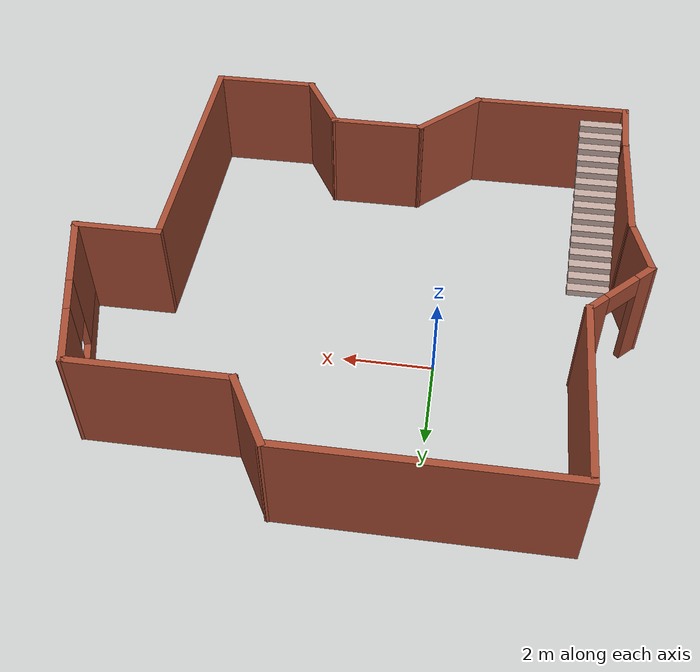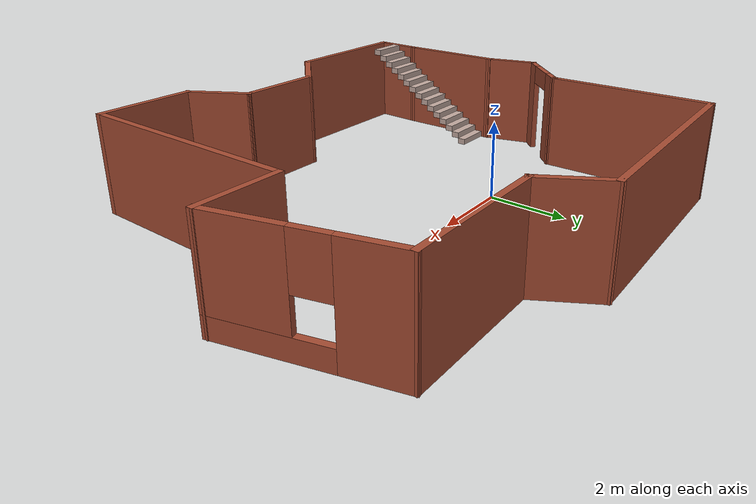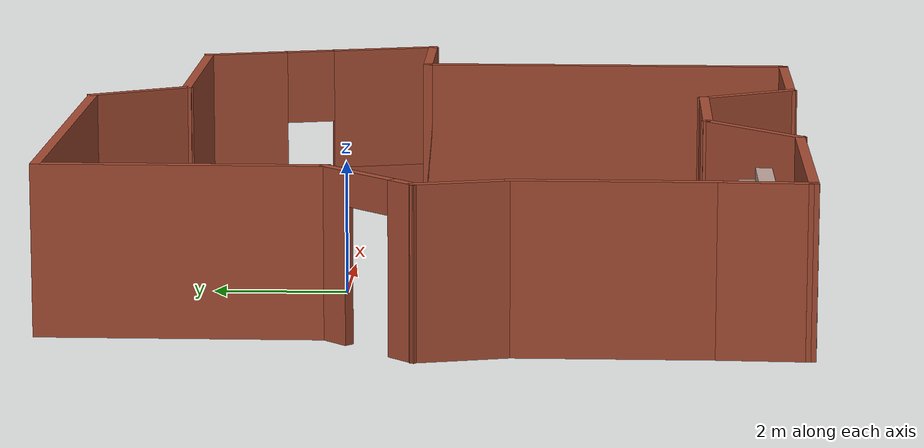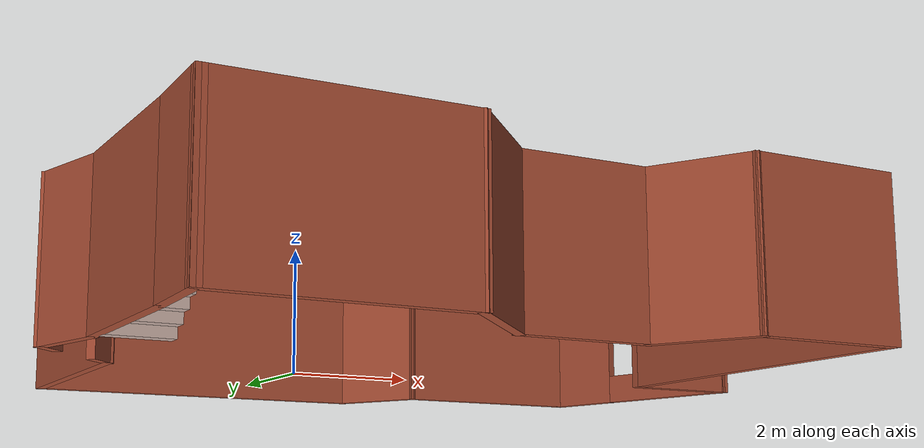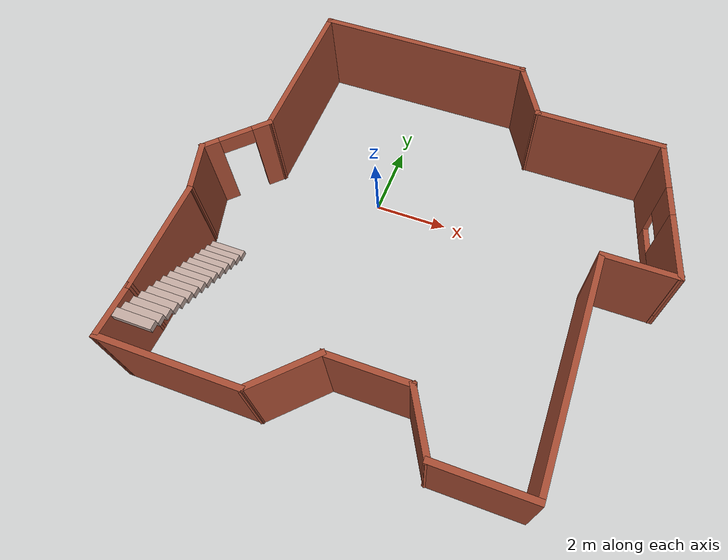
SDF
<?xml version='1.0'?>
<sdf version='1.7'>
  <model name='TestRoom'>
    <pose>1.81579 -1.29508 0 0 -0 0</pose>
    <link name='Stairs_0'>
      <visual name='Stairs_0_Visual_0'>
        <pose>-5.24154 -1.49432 0.083333 0 -0 0</pose>
        <geometry>
          <box>
            <size>1 0.233333 0.166667</size>
          </box>
        </geometry>
        <material>
          <script>
            <uri>file://media/materials/scripts/gazebo.material</uri>
            <name>Gazebo/Grey</name>
          </script>
          <ambient>0.760784 0.662745 0.627451 1</ambient>
        </material>
        <meta>
          <layer>0</layer>
        </meta>
      </visual>
      <collision name='Stairs_0_Collision_0'>
        <geometry>
          <box>
            <size>1 0.233333 0.166667</size>
          </box>
        </geometry>
        <pose>-5.24154 -1.49432 0.083333 0 -0 0</pose>
      </collision>
      <visual name='Stairs_0_Visual_1'>
        <pose>-5.24154 -1.72765 0.25 0 -0 0</pose>
        <geometry>
          <box>
            <size>1 0.233333 0.166667</size>
          </box>
        </geometry>
        <material>
          <script>
            <uri>file://media/materials/scripts/gazebo.material</uri>
            <name>Gazebo/Grey</name>
          </script>
          <ambient>0.760784 0.662745 0.627451 1</ambient>
        </material>
        <meta>
          <layer>0</layer>
        </meta>
      </visual>
      <collision name='Stairs_0_Collision_1'>
        <geometry>
          <box>
            <size>1 0.233333 0.166667</size>
          </box>
        </geometry>
        <pose>-5.24154 -1.72765 0.25 0 -0 0</pose>
      </collision>
      <visual name='Stairs_0_Visual_2'>
        <pose>-5.24154 -1.96098 0.416667 0 -0 0</pose>
        <geometry>
          <box>
            <size>1 0.233333 0.166667</size>
          </box>
        </geometry>
        <material>
          <script>
            <uri>file://media/materials/scripts/gazebo.material</uri>
            <name>Gazebo/Grey</name>
          </script>
          <ambient>0.760784 0.662745 0.627451 1</ambient>
        </material>
        <meta>
          <layer>0</layer>
        </meta>
      </visual>
      <collision name='Stairs_0_Collision_2'>
        <geometry>
          <box>
            <size>1 0.233333 0.166667</size>
          </box>
        </geometry>
        <pose>-5.24154 -1.96098 0.416667 0 -0 0</pose>
      </collision>
      <visual name='Stairs_0_Visual_3'>
        <pose>-5.24154 -2.19432 0.583333 0 -0 0</pose>
        <geometry>
          <box>
            <size>1 0.233333 0.166667</size>
          </box>
        </geometry>
        <material>
          <script>
            <uri>file://media/materials/scripts/gazebo.material</uri>
            <name>Gazebo/Grey</name>
          </script>
          <ambient>0.760784 0.662745 0.627451 1</ambient>
        </material>
        <meta>
          <layer>0</layer>
        </meta>
      </visual>
      <collision name='Stairs_0_Collision_3'>
        <geometry>
          <box>
            <size>1 0.233333 0.166667</size>
          </box>
        </geometry>
        <pose>-5.24154 -2.19432 0.583333 0 -0 0</pose>
      </collision>
      <visual name='Stairs_0_Visual_4'>
        <pose>-5.24154 -2.42765 0.75 0 -0 0</pose>
        <geometry>
          <box>
            <size>1 0.233333 0.166667</size>
          </box>
        </geometry>
        <material>
          <script>
            <uri>file://media/materials/scripts/gazebo.material</uri>
            <name>Gazebo/Grey</name>
          </script>
          <ambient>0.760784 0.662745 0.627451 1</ambient>
        </material>
        <meta>
          <layer>0</layer>
        </meta>
      </visual>
      <collision name='Stairs_0_Collision_4'>
        <geometry>
          <box>
            <size>1 0.233333 0.166667</size>
          </box>
        </geometry>
        <pose>-5.24154 -2.42765 0.75 0 -0 0</pose>
      </collision>
      <visual name='Stairs_0_Visual_5'>
        <pose>-5.24154 -2.66099 0.916667 0 -0 0</pose>
        <geometry>
          <box>
            <size>1 0.233333 0.166667</size>
          </box>
        </geometry>
        <material>
          <script>
            <uri>file://media/materials/scripts/gazebo.material</uri>
            <name>Gazebo/Grey</name>
          </script>
          <ambient>0.760784 0.662745 0.627451 1</ambient>
        </material>
        <meta>
          <layer>0</layer>
        </meta>
      </visual>
      <collision name='Stairs_0_Collision_5'>
        <geometry>
          <box>
            <size>1 0.233333 0.166667</size>
          </box>
        </geometry>
        <pose>-5.24154 -2.66099 0.916667 0 -0 0</pose>
      </collision>
      <visual name='Stairs_0_Visual_6'>
        <pose>-5.24154 -2.89432 1.08333 0 -0 0</pose>
        <geometry>
          <box>
            <size>1 0.233333 0.166667</size>
          </box>
        </geometry>
        <material>
          <script>
            <uri>file://media/materials/scripts/gazebo.material</uri>
            <name>Gazebo/Grey</name>
          </script>
          <ambient>0.760784 0.662745 0.627451 1</ambient>
        </material>
        <meta>
          <layer>0</layer>
        </meta>
      </visual>
      <collision name='Stairs_0_Collision_6'>
        <geometry>
          <box>
            <size>1 0.233333 0.166667</size>
          </box>
        </geometry>
        <pose>-5.24154 -2.89432 1.08333 0 -0 0</pose>
      </collision>
      <visual name='Stairs_0_Visual_7'>
        <pose>-5.24154 -3.12765 1.25 0 -0 0</pose>
        <geometry>
          <box>
            <size>1 0.233333 0.166667</size>
          </box>
        </geometry>
        <material>
          <script>
            <uri>file://media/materials/scripts/gazebo.material</uri>
            <name>Gazebo/Grey</name>
          </script>
          <ambient>0.760784 0.662745 0.627451 1</ambient>
        </material>
        <meta>
          <layer>0</layer>
        </meta>
      </visual>
      <collision name='Stairs_0_Collision_7'>
        <geometry>
          <box>
            <size>1 0.233333 0.166667</size>
          </box>
        </geometry>
        <pose>-5.24154 -3.12765 1.25 0 -0 0</pose>
      </collision>
      <visual name='Stairs_0_Visual_8'>
        <pose>-5.24154 -3.36098 1.41667 0 -0 0</pose>
        <geometry>
          <box>
            <size>1 0.233333 0.166667</size>
          </box>
        </geometry>
        <material>
          <script>
            <uri>file://media/materials/scripts/gazebo.material</uri>
            <name>Gazebo/Grey</name>
          </script>
          <ambient>0.760784 0.662745 0.627451 1</ambient>
        </material>
        <meta>
          <layer>0</layer>
        </meta>
      </visual>
      <collision name='Stairs_0_Collision_8'>
        <geometry>
          <box>
            <size>1 0.233333 0.166667</size>
          </box>
        </geometry>
        <pose>-5.24154 -3.36098 1.41667 0 -0 0</pose>
      </collision>
      <visual name='Stairs_0_Visual_9'>
        <pose>-5.24154 -3.59432 1.58333 0 -0 0</pose>
        <geometry>
          <box>
            <size>1 0.233333 0.166667</size>
          </box>
        </geometry>
        <material>
          <script>
            <uri>file://media/materials/scripts/gazebo.material</uri>
            <name>Gazebo/Grey</name>
          </script>
          <ambient>0.760784 0.662745 0.627451 1</ambient>
        </material>
        <meta>
          <layer>0</layer>
        </meta>
      </visual>
      <collision name='Stairs_0_Collision_9'>
        <geometry>
          <box>
            <size>1 0.233333 0.166667</size>
          </box>
        </geometry>
        <pose>-5.24154 -3.59432 1.58333 0 -0 0</pose>
      </collision>
      <visual name='Stairs_0_Visual_10'>
        <pose>-5.24154 -3.82765 1.75 0 -0 0</pose>
        <geometry>
          <box>
            <size>1 0.233333 0.166667</size>
          </box>
        </geometry>
        <material>
          <script>
            <uri>file://media/materials/scripts/gazebo.material</uri>
            <name>Gazebo/Grey</name>
          </script>
          <ambient>0.760784 0.662745 0.627451 1</ambient>
        </material>
        <meta>
          <layer>0</layer>
        </meta>
      </visual>
      <collision name='Stairs_0_Collision_10'>
        <geometry>
          <box>
            <size>1 0.233333 0.166667</size>
          </box>
        </geometry>
        <pose>-5.24154 -3.82765 1.75 0 -0 0</pose>
      </collision>
      <visual name='Stairs_0_Visual_11'>
        <pose>-5.24154 -4.06098 1.91667 0 -0 0</pose>
        <geometry>
          <box>
            <size>1 0.233333 0.166667</size>
          </box>
        </geometry>
        <material>
          <script>
            <uri>file://media/materials/scripts/gazebo.material</uri>
            <name>Gazebo/Grey</name>
          </script>
          <ambient>0.760784 0.662745 0.627451 1</ambient>
        </material>
        <meta>
          <layer>0</layer>
        </meta>
      </visual>
      <collision name='Stairs_0_Collision_11'>
        <geometry>
          <box>
            <size>1 0.233333 0.166667</size>
          </box>
        </geometry>
        <pose>-5.24154 -4.06098 1.91667 0 -0 0</pose>
      </collision>
      <visual name='Stairs_0_Visual_12'>
        <pose>-5.24154 -4.29432 2.08333 0 -0 0</pose>
        <geometry>
          <box>
            <size>1 0.233333 0.166667</size>
          </box>
        </geometry>
        <material>
          <script>
            <uri>file://media/materials/scripts/gazebo.material</uri>
            <name>Gazebo/Grey</name>
          </script>
          <ambient>0.760784 0.662745 0.627451 1</ambient>
        </material>
        <meta>
          <layer>0</layer>
        </meta>
      </visual>
      <collision name='Stairs_0_Collision_12'>
        <geometry>
          <box>
            <size>1 0.233333 0.166667</size>
          </box>
        </geometry>
        <pose>-5.24154 -4.29432 2.08333 0 -0 0</pose>
      </collision>
      <visual name='Stairs_0_Visual_13'>
        <pose>-5.24154 -4.52765 2.25 0 -0 0</pose>
        <geometry>
          <box>
            <size>1 0.233333 0.166667</size>
          </box>
        </geometry>
        <material>
          <script>
            <uri>file://media/materials/scripts/gazebo.material</uri>
            <name>Gazebo/Grey</name>
          </script>
          <ambient>0.760784 0.662745 0.627451 1</ambient>
        </material>
        <meta>
          <layer>0</layer>
        </meta>
      </visual>
      <collision name='Stairs_0_Collision_13'>
        <geometry>
          <box>
            <size>1 0.233333 0.166667</size>
          </box>
        </geometry>
        <pose>-5.24154 -4.52765 2.25 0 -0 0</pose>
      </collision>
      <visual name='Stairs_0_Visual_14'>
        <pose>-5.24154 -4.76098 2.41667 0 -0 0</pose>
        <geometry>
          <box>
            <size>1 0.233333 0.166667</size>
          </box>
        </geometry>
        <material>
          <script>
            <uri>file://media/materials/scripts/gazebo.material</uri>
            <name>Gazebo/Grey</name>
          </script>
          <ambient>0.760784 0.662745 0.627451 1</ambient>
        </material>
        <meta>
          <layer>0</layer>
        </meta>
      </visual>
      <collision name='Stairs_0_Collision_14'>
        <geometry>
          <box>
            <size>1 0.233333 0.166667</size>
          </box>
        </geometry>
        <pose>-5.24154 -4.76098 2.41667 0 -0 0</pose>
      </collision>
    </link>
    <link name='Wall_10'>
      <collision name='Wall_10_Collision'>
        <geometry>
          <box>
            <size>6 0.15 2.5</size>
          </box>
        </geometry>
        <pose>0 0 1.25 0 -0 0</pose>
      </collision>
      <visual name='Wall_10_Visual'>
        <pose>0 0 1.25 0 -0 0</pose>
        <geometry>
          <box>
            <size>6 0.15 2.5</size>
          </box>
        </geometry>
        <material>
          <script>
            <uri>file://media/materials/scripts/gazebo.material</uri>
            <name>Gazebo/Bricks</name>
          </script>
          <ambient>1 0.764706 0.305882 1</ambient>
        </material>
        <meta>
          <layer>0</layer>
        </meta>
      </visual>
      <pose>-1.91205 5.47723 0 0 -0 0</pose>
    </link>
    <link name='Wall_11'>
      <collision name='Wall_11_Collision'>
        <geometry>
          <box>
            <size>1.75 0.15 2.5</size>
          </box>
        </geometry>
        <pose>0 0 1.25 0 -0 0</pose>
      </collision>
      <visual name='Wall_11_Visual'>
        <pose>0 0 1.25 0 -0 0</pose>
        <geometry>
          <box>
            <size>1.75 0.15 2.5</size>
          </box>
        </geometry>
        <material>
          <script>
            <uri>file://media/materials/scripts/gazebo.material</uri>
            <name>Gazebo/Bricks</name>
          </script>
          <ambient>1 0.764706 0.305882 1</ambient>
        </material>
        <meta>
          <layer>0</layer>
        </meta>
      </visual>
      <pose>1.41295 4.78441 0 0 -0 -1.0472</pose>
    </link>
    <link name='Wall_12'>
      <collision name='Wall_12_Collision'>
        <geometry>
          <box>
            <size>3.5 0.15 2.5</size>
          </box>
        </geometry>
        <pose>0 0 1.25 0 -0 0</pose>
      </collision>
      <visual name='Wall_12_Visual'>
        <pose>0 0 1.25 0 -0 0</pose>
        <geometry>
          <box>
            <size>3.5 0.15 2.5</size>
          </box>
        </geometry>
        <material>
          <script>
            <uri>file://media/materials/scripts/gazebo.material</uri>
            <name>Gazebo/Bricks</name>
          </script>
          <ambient>1 0.764706 0.305882 1</ambient>
        </material>
        <meta>
          <layer>0</layer>
        </meta>
      </visual>
      <pose>3.48795 4.09159 0 0 -0 0</pose>
    </link>
    <link name='Wall_13'>
      <pose>5.66118 2.23218 0 0 -0 -1.309</pose>
      <visual name='Wall_13_Visual_0'>
        <pose>-1.30292 0 1.25 0 -0 0</pose>
        <geometry>
          <box>
            <size>1.39415 0.15 2.5</size>
          </box>
        </geometry>
        <material>
          <script>
            <uri>file://media/materials/scripts/gazebo.material</uri>
            <name>Gazebo/Bricks</name>
          </script>
          <ambient>1 0.764706 0.305882 1</ambient>
        </material>
        <meta>
          <layer>0</layer>
        </meta>
      </visual>
      <collision name='Wall_13_Collision_0'>
        <geometry>
          <box>
            <size>1.39415 0.15 2.5</size>
          </box>
        </geometry>
        <pose>-1.30292 0 1.25 0 -0 0</pose>
      </collision>
      <visual name='Wall_13_Visual_1'>
        <pose>0.697077 0 0.25 0 -0 0</pose>
        <geometry>
          <box>
            <size>2.60585 0.15 0.5</size>
          </box>
        </geometry>
        <material>
          <script>
            <uri>file://media/materials/scripts/gazebo.material</uri>
            <name>Gazebo/Bricks</name>
          </script>
          <ambient>1 0.764706 0.305882 1</ambient>
        </material>
        <meta>
          <layer>0</layer>
        </meta>
      </visual>
      <collision name='Wall_13_Collision_1'>
        <geometry>
          <box>
            <size>2.60585 0.15 0.5</size>
          </box>
        </geometry>
        <pose>0.697077 0 0.25 0 -0 0</pose>
      </collision>
      <visual name='Wall_13_Visual_2'>
        <pose>1.09708 0 1.5 0 -0 0</pose>
        <geometry>
          <box>
            <size>1.80585 0.15 2</size>
          </box>
        </geometry>
        <material>
          <script>
            <uri>file://media/materials/scripts/gazebo.material</uri>
            <name>Gazebo/Bricks</name>
          </script>
          <ambient>1 0.764706 0.305882 1</ambient>
        </material>
        <meta>
          <layer>0</layer>
        </meta>
      </visual>
      <collision name='Wall_13_Collision_2'>
        <geometry>
          <box>
            <size>1.80585 0.15 2</size>
          </box>
        </geometry>
        <pose>1.09708 0 1.5 0 -0 0</pose>
      </collision>
      <visual name='Wall_13_Visual_3'>
        <pose>-0.205846 0 1.9 0 -0 0</pose>
        <geometry>
          <box>
            <size>0.8 0.15 1.2</size>
          </box>
        </geometry>
        <material>
          <script>
            <uri>file://media/materials/scripts/gazebo.material</uri>
            <name>Gazebo/Bricks</name>
          </script>
          <ambient>1 0.764706 0.305882 1</ambient>
        </material>
        <meta>
          <layer>0</layer>
        </meta>
      </visual>
      <collision name='Wall_13_Collision_3'>
        <geometry>
          <box>
            <size>0.8 0.15 1.2</size>
          </box>
        </geometry>
        <pose>-0.205846 0 1.9 0 -0 0</pose>
      </collision>
    </link>
    <link name='Wall_14'>
      <collision name='Wall_14_Collision'>
        <geometry>
          <box>
            <size>2 0.15 2.5</size>
          </box>
        </geometry>
        <pose>0 0 1.25 0 -0 0</pose>
      </collision>
      <visual name='Wall_14_Visual'>
        <pose>0 0 1.25 0 -0 0</pose>
        <geometry>
          <box>
            <size>2 0.15 2.5</size>
          </box>
        </geometry>
        <material>
          <script>
            <uri>file://media/materials/scripts/gazebo.material</uri>
            <name>Gazebo/Bricks</name>
          </script>
          <ambient>1 0.764706 0.305882 1</ambient>
        </material>
        <meta>
          <layer>0</layer>
        </meta>
      </visual>
      <pose>5.23441 0.372773 0 0 -0 3.14159</pose>
    </link>
    <link name='Wall_16'>
      <collision name='Wall_16_Collision'>
        <geometry>
          <box>
            <size>6 0.15 2.5</size>
          </box>
        </geometry>
        <pose>0 0 1.25 0 -0 0</pose>
      </collision>
      <visual name='Wall_16_Visual'>
        <pose>0 0 1.25 0 -0 0</pose>
        <geometry>
          <box>
            <size>6 0.15 2.5</size>
          </box>
        </geometry>
        <material>
          <script>
            <uri>file://media/materials/scripts/gazebo.material</uri>
            <name>Gazebo/Bricks</name>
          </script>
          <ambient>1 0.764706 0.305882 1</ambient>
        </material>
        <meta>
          <layer>0</layer>
        </meta>
      </visual>
      <pose>4.3094 -2.55223 0 0 -0 -1.5708</pose>
    </link>
    <link name='Wall_17'>
      <collision name='Wall_17_Collision'>
        <geometry>
          <box>
            <size>2.5 0.15 2.5</size>
          </box>
        </geometry>
        <pose>0 0 1.25 0 -0 0</pose>
      </collision>
      <visual name='Wall_17_Visual'>
        <pose>0 0 1.25 0 -0 0</pose>
        <geometry>
          <box>
            <size>2.5 0.15 2.5</size>
          </box>
        </geometry>
        <material>
          <script>
            <uri>file://media/materials/scripts/gazebo.material</uri>
            <name>Gazebo/Bricks</name>
          </script>
          <ambient>1 0.764706 0.305882 1</ambient>
        </material>
        <meta>
          <layer>0</layer>
        </meta>
      </visual>
      <pose>3.13441 -5.47723 0 0 -0 3.14159</pose>
    </link>
    <link name='Wall_18'>
      <collision name='Wall_18_Collision'>
        <geometry>
          <box>
            <size>1.75 0.15 2.5</size>
          </box>
        </geometry>
        <pose>0 0 1.25 0 -0 0</pose>
      </collision>
      <visual name='Wall_18_Visual'>
        <pose>0 0 1.25 0 -0 0</pose>
        <geometry>
          <box>
            <size>1.75 0.15 2.5</size>
          </box>
        </geometry>
        <material>
          <script>
            <uri>file://media/materials/scripts/gazebo.material</uri>
            <name>Gazebo/Bricks</name>
          </script>
          <ambient>1 0.764706 0.305882 1</ambient>
        </material>
        <meta>
          <layer>0</layer>
        </meta>
      </visual>
      <pose>1.55941 -4.78441 0 0 -0 2.0944</pose>
    </link>
    <link name='Wall_19'>
      <collision name='Wall_19_Collision'>
        <geometry>
          <box>
            <size>2.25 0.15 2.5</size>
          </box>
        </geometry>
        <pose>0 0 1.25 0 -0 0</pose>
      </collision>
      <visual name='Wall_19_Visual'>
        <pose>0 0 1.25 0 -0 0</pose>
        <geometry>
          <box>
            <size>2.25 0.15 2.5</size>
          </box>
        </geometry>
        <material>
          <script>
            <uri>file://media/materials/scripts/gazebo.material</uri>
            <name>Gazebo/Bricks</name>
          </script>
          <ambient>1 0.764706 0.305882 1</ambient>
        </material>
        <meta>
          <layer>0</layer>
        </meta>
      </visual>
      <pose>0.109406 -4.09159 0 0 -0 3.14159</pose>
    </link>
    <link name='Wall_2'>
      <collision name='Wall_2_Collision'>
        <geometry>
          <box>
            <size>3 0.15 2.5</size>
          </box>
        </geometry>
        <pose>0 0 1.25 0 -0 0</pose>
      </collision>
      <visual name='Wall_2_Visual'>
        <pose>0 0 1.25 0 -0 0</pose>
        <geometry>
          <box>
            <size>3 0.15 2.5</size>
          </box>
        </geometry>
        <material>
          <script>
            <uri>file://media/materials/scripts/gazebo.material</uri>
            <name>Gazebo/Bricks</name>
          </script>
          <ambient>1 0.764706 0.305882 1</ambient>
        </material>
        <meta>
          <layer>0</layer>
        </meta>
      </visual>
      <pose>-5.79579 -2.65992 0 0 -0 -1.5708</pose>
    </link>
    <link name='Wall_20'>
      <collision name='Wall_20_Collision'>
        <geometry>
          <box>
            <size>2 0.15 2.5</size>
          </box>
        </geometry>
        <pose>0 0 1.25 0 -0 0</pose>
      </collision>
      <visual name='Wall_20_Visual'>
        <pose>0 0 1.25 0 -0 0</pose>
        <geometry>
          <box>
            <size>2 0.15 2.5</size>
          </box>
        </geometry>
        <material>
          <script>
            <uri>file://media/materials/scripts/gazebo.material</uri>
            <name>Gazebo/Bricks</name>
          </script>
          <ambient>1 0.764706 0.305882 1</ambient>
        </material>
        <meta>
          <layer>0</layer>
        </meta>
      </visual>
      <pose>-1.59467 -4.74566 0 0 -0 -2.35619</pose>
    </link>
    <link name='Wall_21'>
      <collision name='Wall_21_Collision'>
        <geometry>
          <box>
            <size>3.75 0.15 2.5</size>
          </box>
        </geometry>
        <pose>0 0 1.25 0 -0 0</pose>
      </collision>
      <visual name='Wall_21_Visual'>
        <pose>0 0 1.25 0 -0 0</pose>
        <geometry>
          <box>
            <size>3.75 0.15 2.5</size>
          </box>
        </geometry>
        <material>
          <script>
            <uri>file://media/materials/scripts/gazebo.material</uri>
            <name>Gazebo/Bricks</name>
          </script>
          <ambient>1 0.764706 0.305882 1</ambient>
        </material>
        <meta>
          <layer>0</layer>
        </meta>
      </visual>
      <pose>-4.04874 -5.39973 0 0 -0 3.14159</pose>
    </link>
    <link name='Wall_22'>
      <collision name='Wall_22_Collision'>
        <geometry>
          <box>
            <size>1.46588 0.15 2.5</size>
          </box>
        </geometry>
        <pose>0 0 1.25 0 -0 0</pose>
      </collision>
      <visual name='Wall_22_Visual'>
        <pose>0 0 1.25 0 -0 0</pose>
        <geometry>
          <box>
            <size>1.46588 0.15 2.5</size>
          </box>
        </geometry>
        <material>
          <script>
            <uri>file://media/materials/scripts/gazebo.material</uri>
            <name>Gazebo/Bricks</name>
          </script>
          <ambient>1 0.764706 0.305882 1</ambient>
        </material>
        <meta>
          <layer>0</layer>
        </meta>
      </visual>
      <pose>-5.82227 -4.74233 0 0 -0 1.53054</pose>
    </link>
    <link name='Wall_6'>
      <collision name='Wall_6_Collision'>
        <geometry>
          <box>
            <size>1.5 0.15 2.5</size>
          </box>
        </geometry>
        <pose>0 0 1.25 0 -0 0</pose>
      </collision>
      <visual name='Wall_6_Visual'>
        <pose>0 0 1.25 0 -0 0</pose>
        <geometry>
          <box>
            <size>1.5 0.15 2.5</size>
          </box>
        </geometry>
        <material>
          <script>
            <uri>file://media/materials/scripts/gazebo.material</uri>
            <name>Gazebo/Bricks</name>
          </script>
          <ambient>1 0.764706 0.305882 1</ambient>
        </material>
        <meta>
          <layer>0</layer>
        </meta>
      </visual>
      <pose>-5.97049 -0.58292 0 0 -0 1.8326</pose>
    </link>
    <link name='Wall_7'>
      <pose>-5.49112 0.723154 0 0 -0 0.785398</pose>
      <visual name='Wall_7_Visual_0'>
        <pose>-0.734606 0 1.25 0 -0 0</pose>
        <geometry>
          <box>
            <size>0.530788 0.15 2.5</size>
          </box>
        </geometry>
        <material>
          <script>
            <uri>file://media/materials/scripts/gazebo.material</uri>
            <name>Gazebo/Bricks</name>
          </script>
          <ambient>1 0.764706 0.305882 1</ambient>
        </material>
        <meta>
          <layer>0</layer>
        </meta>
      </visual>
      <collision name='Wall_7_Collision_0'>
        <geometry>
          <box>
            <size>0.530788 0.15 2.5</size>
          </box>
        </geometry>
        <pose>-0.734606 0 1.25 0 -0 0</pose>
      </collision>
      <visual name='Wall_7_Visual_1'>
        <pose>0.715394 0 1.25 0 -0 0</pose>
        <geometry>
          <box>
            <size>0.569212 0.15 2.5</size>
          </box>
        </geometry>
        <material>
          <script>
            <uri>file://media/materials/scripts/gazebo.material</uri>
            <name>Gazebo/Bricks</name>
          </script>
          <ambient>1 0.764706 0.305882 1</ambient>
        </material>
        <meta>
          <layer>0</layer>
        </meta>
      </visual>
      <collision name='Wall_7_Collision_1'>
        <geometry>
          <box>
            <size>0.569212 0.15 2.5</size>
          </box>
        </geometry>
        <pose>0.715394 0 1.25 0 -0 0</pose>
      </collision>
      <visual name='Wall_7_Visual_2'>
        <pose>-0.019212 0 2.25 0 -0 0</pose>
        <geometry>
          <box>
            <size>0.9 0.15 0.5</size>
          </box>
        </geometry>
        <material>
          <script>
            <uri>file://media/materials/scripts/gazebo.material</uri>
            <name>Gazebo/Bricks</name>
          </script>
          <ambient>1 0.764706 0.305882 1</ambient>
        </material>
        <meta>
          <layer>0</layer>
        </meta>
      </visual>
      <collision name='Wall_7_Collision_2'>
        <geometry>
          <box>
            <size>0.9 0.15 0.5</size>
          </box>
        </geometry>
        <pose>-0.019212 0 2.25 0 -0 0</pose>
      </collision>
    </link>
    <link name='Wall_9'>
      <collision name='Wall_9_Collision'>
        <geometry>
          <box>
            <size>4.25 0.15 2.5</size>
          </box>
        </geometry>
        <pose>0 0 1.25 0 -0 0</pose>
      </collision>
      <visual name='Wall_9_Visual'>
        <pose>0 0 1.25 0 -0 0</pose>
        <geometry>
          <box>
            <size>4.25 0.15 2.5</size>
          </box>
        </geometry>
        <material>
          <script>
            <uri>file://media/materials/scripts/gazebo.material</uri>
            <name>Gazebo/Bricks</name>
          </script>
          <ambient>1 0.764706 0.305882 1</ambient>
        </material>
        <meta>
          <layer>0</layer>
        </meta>
      </visual>
      <pose>-4.83705 3.42723 0 0 -0 1.5708</pose>
    </link>
    <static>1</static>
  </model>
</sdf>
